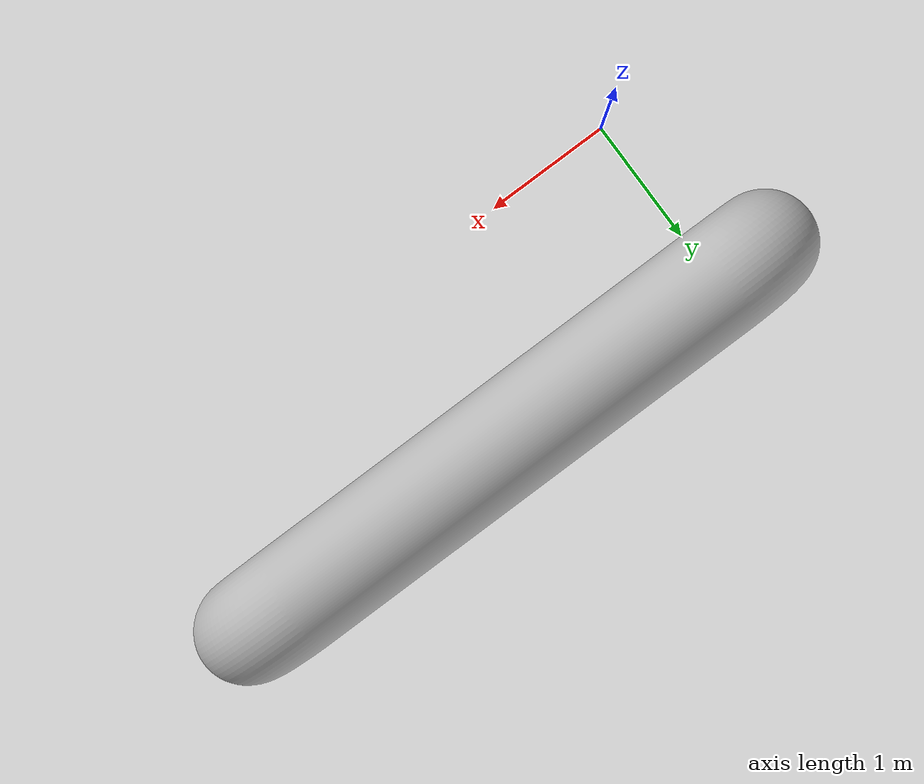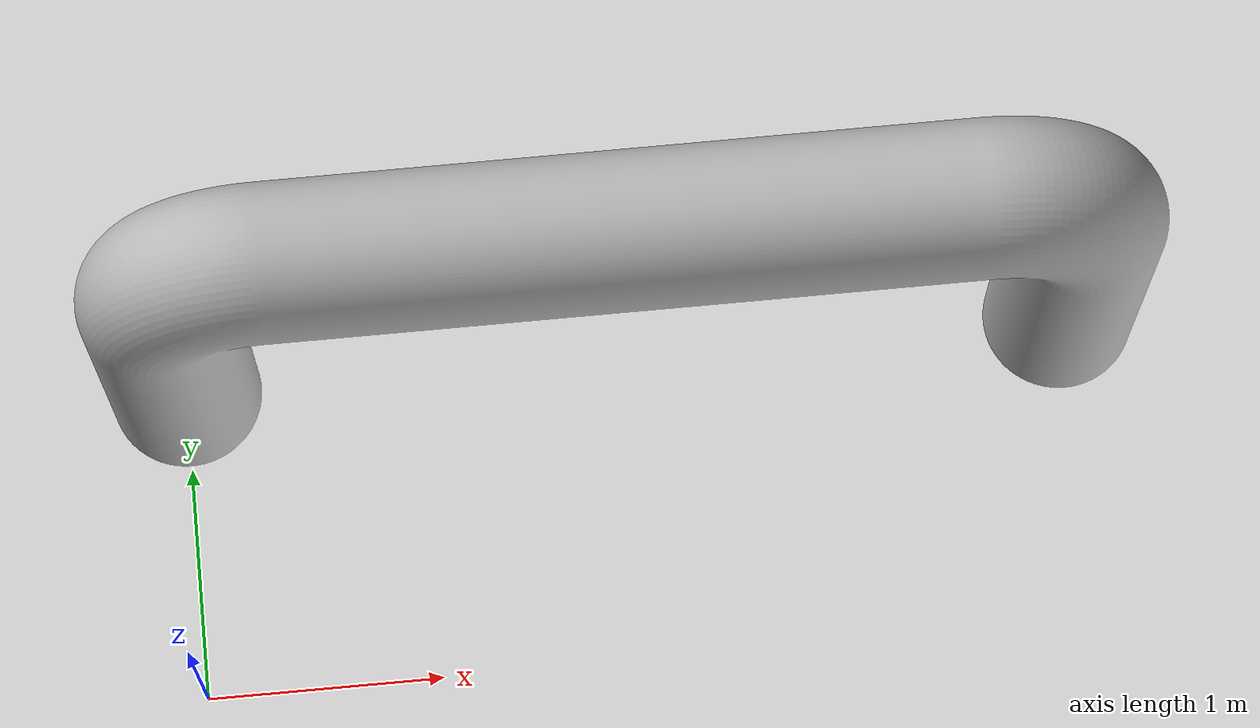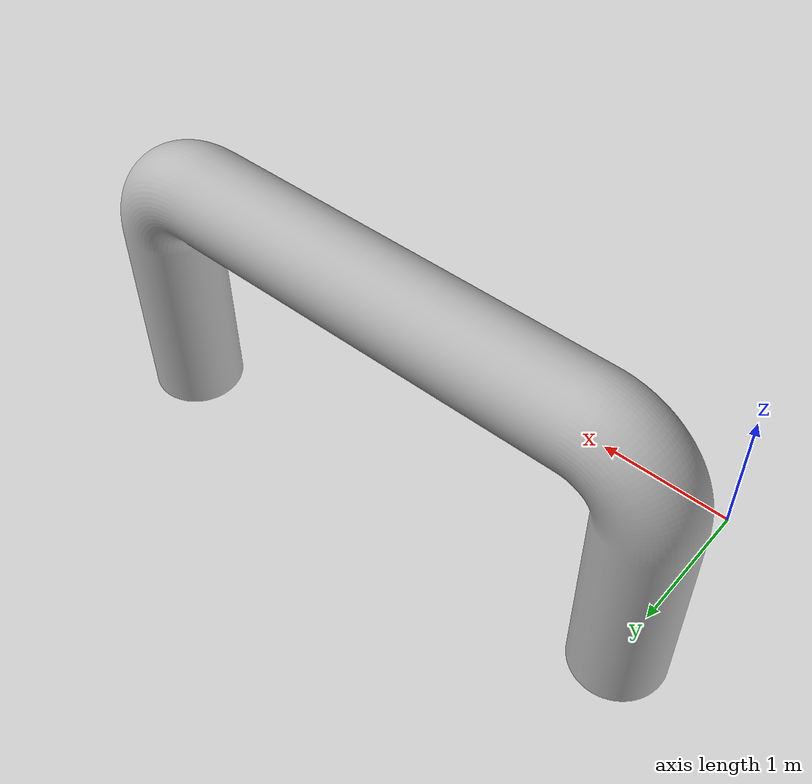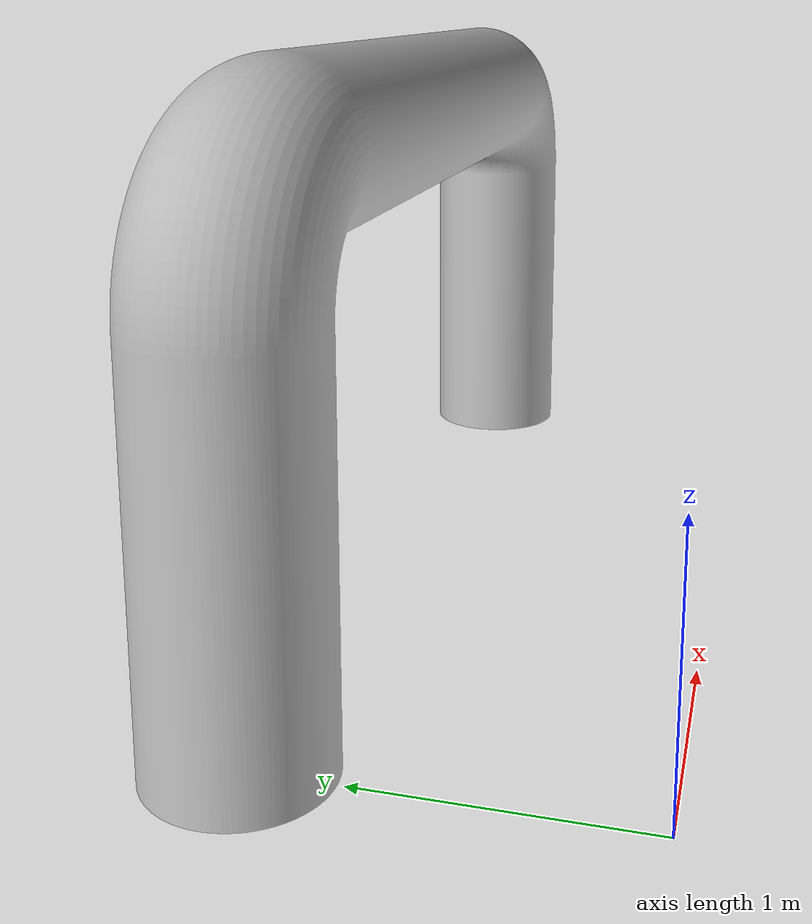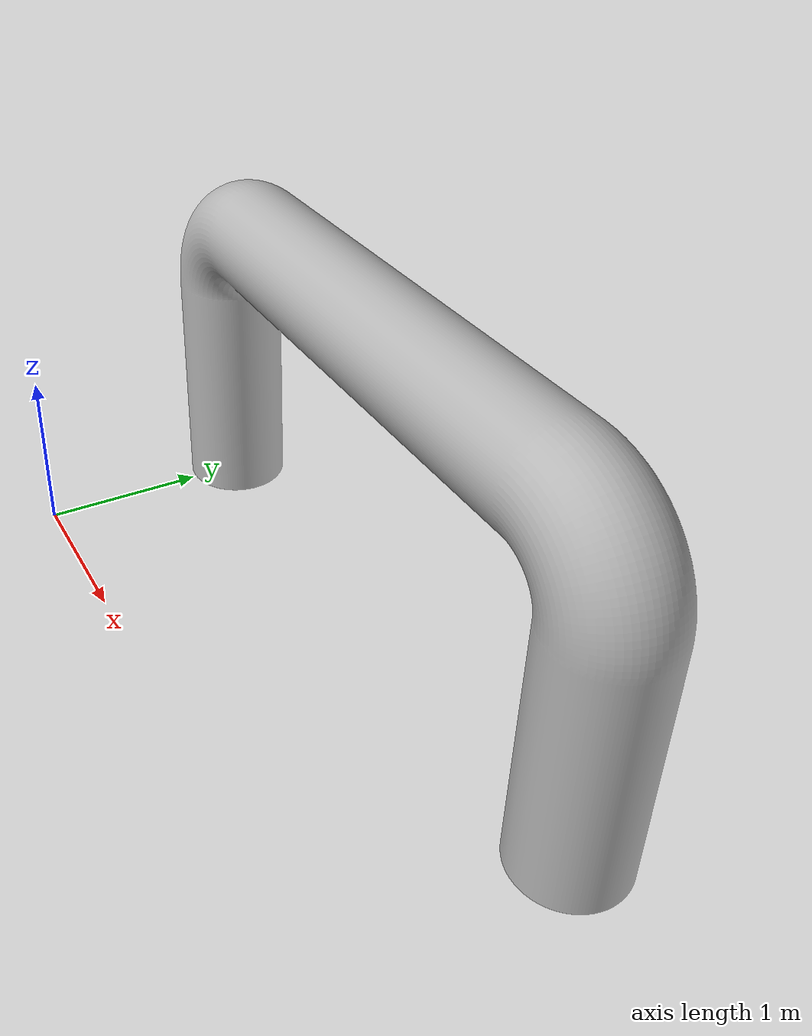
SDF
<?xml version="1.0"?>
<sdf version="1.6">
  <model name="pipe24">
    <link name="link">
      <collision name="collision">
        <geometry>
          <mesh>
            <uri>model://pipe24/meshes/pipe24.dae</uri>
          </mesh>
        </geometry>
      </collision>
      <visual name="visual">
        <geometry>
          <mesh>
            <uri>model://pipe24/meshes/pipe24.dae</uri>
          </mesh>
        </geometry>
      </visual>
    </link>
  </model>
</sdf>
